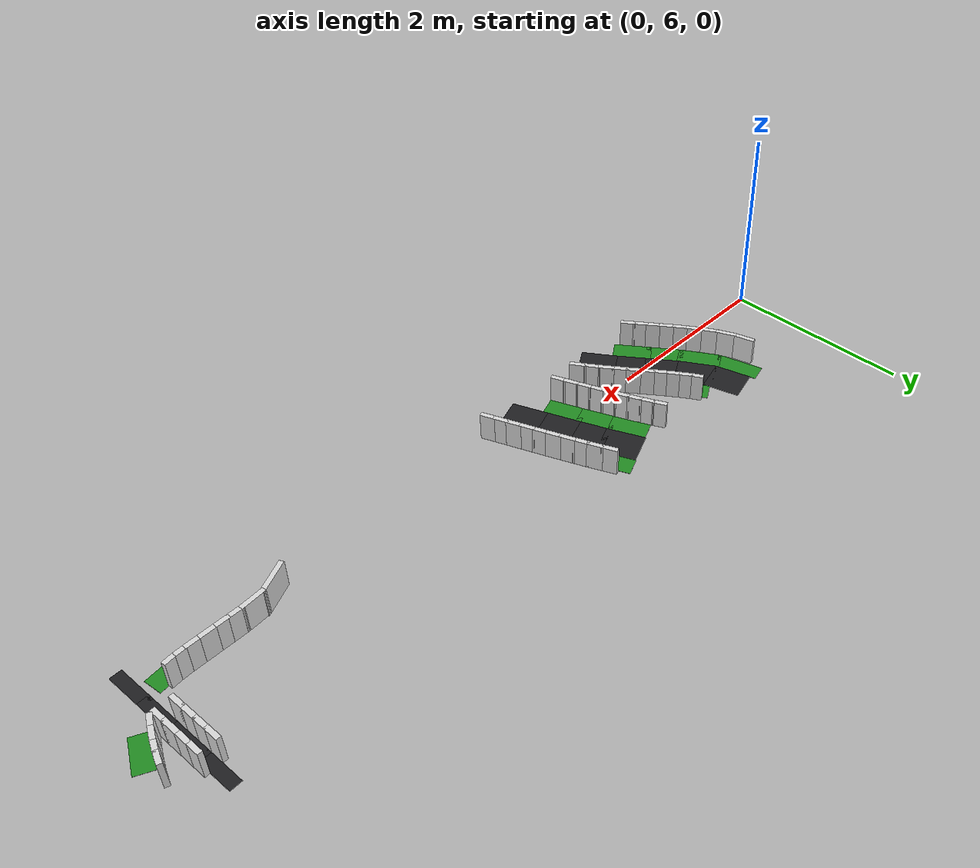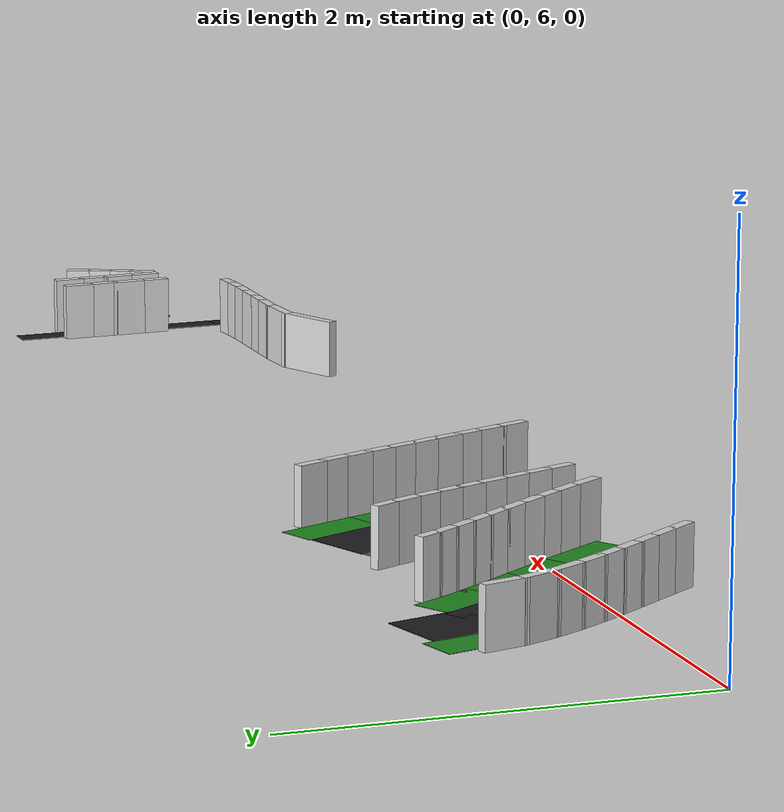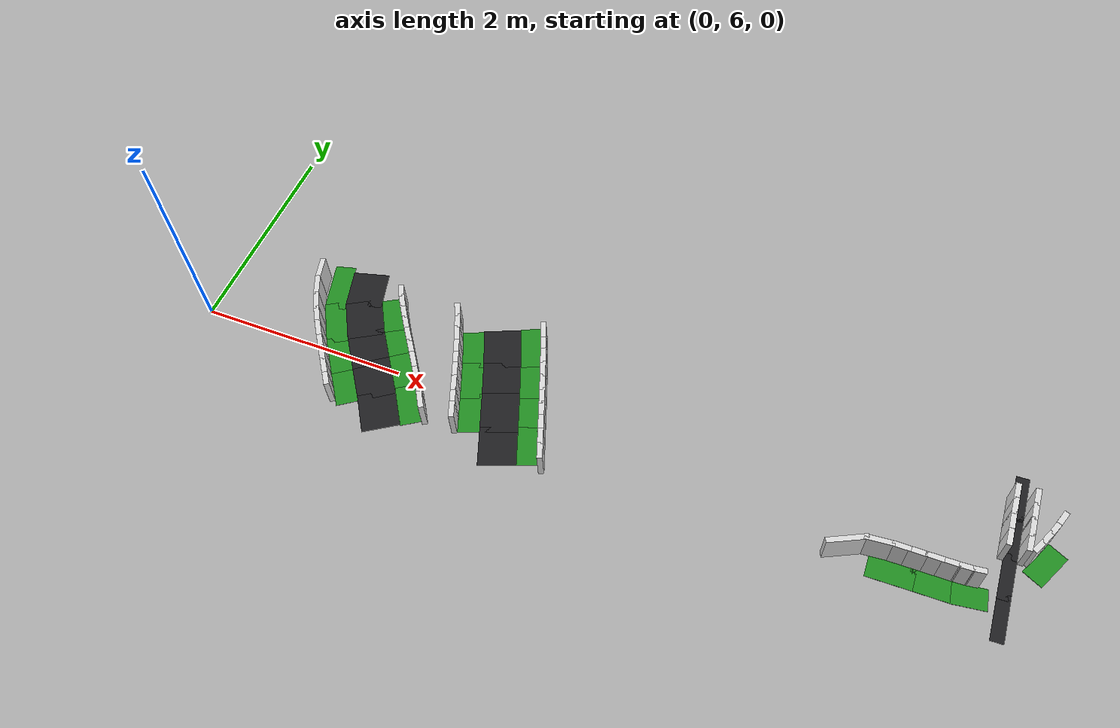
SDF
<sdf version="1.8">
 <world name="it_arena_track">
  <model name="it_arena_track_static">
   <static>true</static>
   <link name="surface_main_69">
    <pose>3.1874 5.6186 0.0015 0 0 1.93135</pose>
    <collision name="surface_main_69_col">
     <geometry><box><size>0.3910 0.3500 0.0030</size></box></geometry>
    </collision>
    <visual name="surface_main_69_vis">
     <geometry><box><size>0.3910 0.3500 0.0030</size></box></geometry>
     <material><ambient>0.12 0.12 0.13 1</ambient><diffuse>0.12 0.12 0.13 1</diffuse></material>
    </visual>
   </link>
   <link name="surface_main_70">
    <pose>3.0635 5.9459 0.0015 0 0 1.93382</pose>
    <collision name="surface_main_70_col">
     <geometry><box><size>0.4140 0.3500 0.0030</size></box></geometry>
    </collision>
    <visual name="surface_main_70_vis">
     <geometry><box><size>0.4140 0.3500 0.0030</size></box></geometry>
     <material><ambient>0.12 0.12 0.13 1</ambient><diffuse>0.12 0.12 0.13 1</diffuse></material>
    </visual>
   </link>
   <link name="surface_main_71">
    <pose>2.9375 6.2724 0.0015 0 0 1.94493</pose>
    <collision name="surface_main_71_col">
     <geometry><box><size>0.3910 0.3500 0.0030</size></box></geometry>
    </collision>
    <visual name="surface_main_71_vis">
     <geometry><box><size>0.3910 0.3500 0.0030</size></box></geometry>
     <material><ambient>0.12 0.12 0.13 1</ambient><diffuse>0.12 0.12 0.13 1</diffuse></material>
    </visual>
   </link>
   <link name="surface_main_72">
    <pose>2.8050 6.5963 0.0015 0 0 1.97211</pose>
    <collision name="surface_main_72_col">
     <geometry><box><size>0.4139 0.3500 0.0030</size></box></geometry>
    </collision>
    <visual name="surface_main_72_vis">
     <geometry><box><size>0.4139 0.3500 0.0030</size></box></geometry>
     <material><ambient>0.12 0.12 0.13 1</ambient><diffuse>0.12 0.12 0.13 1</diffuse></material>
    </visual>
   </link>
   <link name="surface_main_80">
    <pose>1.2921 6.7661 0.0015 0 0 -1.31175</pose>
    <collision name="surface_main_80_col">
     <geometry><box><size>0.3885 0.3500 0.0030</size></box></geometry>
    </collision>
    <visual name="surface_main_80_vis">
     <geometry><box><size>0.3885 0.3500 0.0030</size></box></geometry>
     <material><ambient>0.12 0.12 0.13 1</ambient><diffuse>0.12 0.12 0.13 1</diffuse></material>
    </visual>
   </link>
   <link name="surface_main_81">
    <pose>1.4262 6.4476 0.0015 0 0 -1.04120</pose>
    <collision name="surface_main_81_col">
     <geometry><box><size>0.4136 0.3500 0.0030</size></box></geometry>
    </collision>
    <visual name="surface_main_81_vis">
     <geometry><box><size>0.4136 0.3500 0.0030</size></box></geometry>
     <material><ambient>0.12 0.12 0.13 1</ambient><diffuse>0.12 0.12 0.13 1</diffuse></material>
    </visual>
   </link>
   <link name="surface_main_82">
    <pose>1.6142 6.1529 0.0015 0 0 -0.96266</pose>
    <collision name="surface_main_82_col">
     <geometry><box><size>0.3909 0.3500 0.0030</size></box></geometry>
    </collision>
    <visual name="surface_main_82_vis">
     <geometry><box><size>0.3909 0.3500 0.0030</size></box></geometry>
     <material><ambient>0.12 0.12 0.13 1</ambient><diffuse>0.12 0.12 0.13 1</diffuse></material>
    </visual>
   </link>
   <link name="surface_main_83">
    <pose>1.8152 5.8664 0.0015 0 0 -0.95558</pose>
    <collision name="surface_main_83_col">
     <geometry><box><size>0.4139 0.3500 0.0030</size></box></geometry>
    </collision>
    <visual name="surface_main_83_vis">
     <geometry><box><size>0.4139 0.3500 0.0030</size></box></geometry>
     <material><ambient>0.12 0.12 0.13 1</ambient><diffuse>0.12 0.12 0.13 1</diffuse></material>
    </visual>
   </link>
   <link name="surface_main_84">
    <pose>2.0121 5.5772 0.0015 0 0 -0.99137</pose>
    <collision name="surface_main_84_col">
     <geometry><box><size>0.3909 0.3500 0.0030</size></box></geometry>
    </collision>
    <visual name="surface_main_84_vis">
     <geometry><box><size>0.3909 0.3500 0.0030</size></box></geometry>
     <material><ambient>0.12 0.12 0.13 1</ambient><diffuse>0.12 0.12 0.13 1</diffuse></material>
    </visual>
   </link>
   <link name="surface_branch0_4">
    <pose>7.6753 6.7531 0.0015 0 0 -1.53135</pose>
    <collision name="surface_branch0_4_col">
     <geometry><box><size>0.4392 0.1200 0.0030</size></box></geometry>
    </collision>
    <visual name="surface_branch0_4_vis">
     <geometry><box><size>0.4392 0.1200 0.0030</size></box></geometry>
     <material><ambient>0.12 0.12 0.13 1</ambient><diffuse>0.12 0.12 0.13 1</diffuse></material>
    </visual>
   </link>
   <link name="surface_branch0_5">
    <pose>7.6909 6.3715 0.0015 0 0 -1.52872</pose>
    <collision name="surface_branch0_5_col">
     <geometry><box><size>0.4392 0.1200 0.0030</size></box></geometry>
    </collision>
    <visual name="surface_branch0_5_vis">
     <geometry><box><size>0.4392 0.1200 0.0030</size></box></geometry>
     <material><ambient>0.12 0.12 0.13 1</ambient><diffuse>0.12 0.12 0.13 1</diffuse></material>
    </visual>
   </link>
   <link name="surface_branch0_6">
    <pose>7.7064 5.9899 0.0015 0 0 -1.53139</pose>
    <collision name="surface_branch0_6_col">
     <geometry><box><size>0.4392 0.1200 0.0030</size></box></geometry>
    </collision>
    <visual name="surface_branch0_6_vis">
     <geometry><box><size>0.4392 0.1200 0.0030</size></box></geometry>
     <material><ambient>0.12 0.12 0.13 1</ambient><diffuse>0.12 0.12 0.13 1</diffuse></material>
    </visual>
   </link>
   <link name="surface_branch0_7">
    <pose>7.7220 5.6083 0.0015 0 0 -1.52878</pose>
    <collision name="surface_branch0_7_col">
     <geometry><box><size>0.4392 0.1200 0.0030</size></box></geometry>
    </collision>
    <visual name="surface_branch0_7_vis">
     <geometry><box><size>0.4392 0.1200 0.0030</size></box></geometry>
     <material><ambient>0.12 0.12 0.13 1</ambient><diffuse>0.12 0.12 0.13 1</diffuse></material>
    </visual>
   </link>
   <link name="grass_main_left_70">
    <pose>2.8066 5.8479 0.0010 0 0 1.93381</pose>
    <collision name="grass_main_left_70_col">
     <geometry><box><size>0.4123 0.2000 0.0020</size></box></geometry>
    </collision>
    <visual name="grass_main_left_70_vis">
     <geometry><box><size>0.4123 0.2000 0.0020</size></box></geometry>
     <material><ambient>0.13 0.55 0.13 1</ambient><diffuse>0.13 0.55 0.13 1</diffuse></material>
    </visual>
   </link>
   <link name="grass_main_left_71">
    <pose>2.6815 6.1717 0.0010 0 0 1.94493</pose>
    <collision name="grass_main_left_71_col">
     <geometry><box><size>0.3862 0.2000 0.0020</size></box></geometry>
    </collision>
    <visual name="grass_main_left_71_vis">
     <geometry><box><size>0.3862 0.2000 0.0020</size></box></geometry>
     <material><ambient>0.13 0.55 0.13 1</ambient><diffuse>0.13 0.55 0.13 1</diffuse></material>
    </visual>
   </link>
   <link name="grass_main_left_72">
    <pose>2.5523 6.4881 0.0010 0 0 1.97200</pose>
    <collision name="grass_main_left_72_col">
     <geometry><box><size>0.3999 0.2000 0.0020</size></box></geometry>
    </collision>
    <visual name="grass_main_left_72_vis">
     <geometry><box><size>0.3999 0.2000 0.0020</size></box></geometry>
     <material><ambient>0.13 0.55 0.13 1</ambient><diffuse>0.13 0.55 0.13 1</diffuse></material>
    </visual>
   </link>
   <link name="grass_main_left_81">
    <pose>1.6651 6.5824 0.0010 0 0 -1.03921</pose>
    <collision name="grass_main_left_81_col">
     <geometry><box><size>0.3670 0.2000 0.0020</size></box></geometry>
    </collision>
    <visual name="grass_main_left_81_vis">
     <geometry><box><size>0.3670 0.2000 0.0020</size></box></geometry>
     <material><ambient>0.13 0.55 0.13 1</ambient><diffuse>0.13 0.55 0.13 1</diffuse></material>
    </visual>
   </link>
   <link name="grass_main_left_82">
    <pose>1.8405 6.3090 0.0010 0 0 -0.96254</pose>
    <collision name="grass_main_left_82_col">
     <geometry><box><size>0.3807 0.2000 0.0020</size></box></geometry>
    </collision>
    <visual name="grass_main_left_82_vis">
     <geometry><box><size>0.3807 0.2000 0.0020</size></box></geometry>
     <material><ambient>0.13 0.55 0.13 1</ambient><diffuse>0.13 0.55 0.13 1</diffuse></material>
    </visual>
   </link>
   <link name="grass_main_left_83">
    <pose>2.0402 6.0245 0.0010 0 0 -0.95561</pose>
    <collision name="grass_main_left_83_col">
     <geometry><box><size>0.4186 0.2000 0.0020</size></box></geometry>
    </collision>
    <visual name="grass_main_left_83_vis">
     <geometry><box><size>0.4186 0.2000 0.0020</size></box></geometry>
     <material><ambient>0.13 0.55 0.13 1</ambient><diffuse>0.13 0.55 0.13 1</diffuse></material>
    </visual>
   </link>
   <link name="grass_main_left_84">
    <pose>2.2425 5.7271 0.0010 0 0 -0.99149</pose>
    <collision name="grass_main_left_84_col">
     <geometry><box><size>0.4088 0.2000 0.0020</size></box></geometry>
    </collision>
    <visual name="grass_main_left_84_vis">
     <geometry><box><size>0.4088 0.2000 0.0020</size></box></geometry>
     <material><ambient>0.13 0.55 0.13 1</ambient><diffuse>0.13 0.55 0.13 1</diffuse></material>
    </visual>
   </link>
   <link name="grass_main_right_41">
    <pose>7.9896 6.2049 0.0010 0 0 -2.03474</pose>
    <collision name="grass_main_right_41_col">
     <geometry><box><size>0.3727 0.2000 0.0020</size></box></geometry>
    </collision>
    <visual name="grass_main_right_41_vis">
     <geometry><box><size>0.3727 0.2000 0.0020</size></box></geometry>
     <material><ambient>0.13 0.55 0.13 1</ambient><diffuse>0.13 0.55 0.13 1</diffuse></material>
    </visual>
   </link>
   <link name="grass_main_right_42">
    <pose>7.4437 5.7034 0.0010 0 0 -3.01030</pose>
    <collision name="grass_main_right_42_col">
     <geometry><box><size>0.3095 0.2000 0.0020</size></box></geometry>
    </collision>
    <visual name="grass_main_right_42_vis">
     <geometry><box><size>0.3095 0.2000 0.0020</size></box></geometry>
     <material><ambient>0.13 0.55 0.13 1</ambient><diffuse>0.13 0.55 0.13 1</diffuse></material>
    </visual>
   </link>
   <link name="grass_main_right_43">
    <pose>7.1339 5.6831 0.0010 0 0 -3.12628</pose>
    <collision name="grass_main_right_43_col">
     <geometry><box><size>0.4059 0.2000 0.0020</size></box></geometry>
    </collision>
    <visual name="grass_main_right_43_vis">
     <geometry><box><size>0.4059 0.2000 0.0020</size></box></geometry>
     <material><ambient>0.13 0.55 0.13 1</ambient><diffuse>0.13 0.55 0.13 1</diffuse></material>
    </visual>
   </link>
   <link name="grass_main_right_44">
    <pose>6.7774 5.6766 0.0010 0 0 -3.12054</pose>
    <collision name="grass_main_right_44_col">
     <geometry><box><size>0.4142 0.2000 0.0020</size></box></geometry>
    </collision>
    <visual name="grass_main_right_44_vis">
     <geometry><box><size>0.4142 0.2000 0.0020</size></box></geometry>
     <material><ambient>0.13 0.55 0.13 1</ambient><diffuse>0.13 0.55 0.13 1</diffuse></material>
    </visual>
   </link>
   <link name="grass_main_right_63">
    <pose>3.4446 5.7159 0.0010 0 0 1.93135</pose>
    <collision name="grass_main_right_63_col">
     <geometry><box><size>0.3914 0.2000 0.0020</size></box></geometry>
    </collision>
    <visual name="grass_main_right_63_vis">
     <geometry><box><size>0.3914 0.2000 0.0020</size></box></geometry>
     <material><ambient>0.13 0.55 0.13 1</ambient><diffuse>0.13 0.55 0.13 1</diffuse></material>
    </visual>
   </link>
   <link name="grass_main_right_64">
    <pose>3.3204 6.0440 0.0010 0 0 1.93382</pose>
    <collision name="grass_main_right_64_col">
     <geometry><box><size>0.4156 0.2000 0.0020</size></box></geometry>
    </collision>
    <visual name="grass_main_right_64_vis">
     <geometry><box><size>0.4156 0.2000 0.0020</size></box></geometry>
     <material><ambient>0.13 0.55 0.13 1</ambient><diffuse>0.13 0.55 0.13 1</diffuse></material>
    </visual>
   </link>
   <link name="grass_main_right_65">
    <pose>3.1934 6.3731 0.0010 0 0 1.94494</pose>
    <collision name="grass_main_right_65_col">
     <geometry><box><size>0.3957 0.2000 0.0020</size></box></geometry>
    </collision>
    <visual name="grass_main_right_65_vis">
     <geometry><box><size>0.3957 0.2000 0.0020</size></box></geometry>
     <material><ambient>0.13 0.55 0.13 1</ambient><diffuse>0.13 0.55 0.13 1</diffuse></material>
    </visual>
   </link>
   <link name="grass_main_right_66">
    <pose>3.0578 6.7045 0.0010 0 0 1.97221</pose>
    <collision name="grass_main_right_66_col">
     <geometry><box><size>0.4280 0.2000 0.0020</size></box></geometry>
    </collision>
    <visual name="grass_main_right_66_vis">
     <geometry><box><size>0.4280 0.2000 0.0020</size></box></geometry>
     <material><ambient>0.13 0.55 0.13 1</ambient><diffuse>0.13 0.55 0.13 1</diffuse></material>
    </visual>
   </link>
   <link name="grass_main_right_74">
    <pose>1.0306 6.6977 0.0010 0 0 -1.31254</pose>
    <collision name="grass_main_right_74_col">
     <geometry><box><size>0.5046 0.2000 0.0020</size></box></geometry>
    </collision>
    <visual name="grass_main_right_74_vis">
     <geometry><box><size>0.5046 0.2000 0.0020</size></box></geometry>
     <material><ambient>0.13 0.55 0.13 1</ambient><diffuse>0.13 0.55 0.13 1</diffuse></material>
    </visual>
   </link>
   <link name="grass_main_right_75">
    <pose>1.1874 6.3128 0.0010 0 0 -1.04279</pose>
    <collision name="grass_main_right_75_col">
     <geometry><box><size>0.4602 0.2000 0.0020</size></box></geometry>
    </collision>
    <visual name="grass_main_right_75_vis">
     <geometry><box><size>0.4602 0.2000 0.0020</size></box></geometry>
     <material><ambient>0.13 0.55 0.13 1</ambient><diffuse>0.13 0.55 0.13 1</diffuse></material>
    </visual>
   </link>
   <link name="grass_main_right_76">
    <pose>1.3878 5.9968 0.0010 0 0 -0.96277</pose>
    <collision name="grass_main_right_76_col">
     <geometry><box><size>0.4011 0.2000 0.0020</size></box></geometry>
    </collision>
    <visual name="grass_main_right_76_vis">
     <geometry><box><size>0.4011 0.2000 0.0020</size></box></geometry>
     <material><ambient>0.13 0.55 0.13 1</ambient><diffuse>0.13 0.55 0.13 1</diffuse></material>
    </visual>
   </link>
   <link name="grass_main_right_77">
    <pose>1.5902 5.7083 0.0010 0 0 -0.95555</pose>
    <collision name="grass_main_right_77_col">
     <geometry><box><size>0.4093 0.2000 0.0020</size></box></geometry>
    </collision>
    <visual name="grass_main_right_77_vis">
     <geometry><box><size>0.4093 0.2000 0.0020</size></box></geometry>
     <material><ambient>0.13 0.55 0.13 1</ambient><diffuse>0.13 0.55 0.13 1</diffuse></material>
    </visual>
   </link>
   <link name="walls_main_left_175">
    <pose>2.7357 5.6828 0.1500 0 0 1.93191</pose>
    <collision name="walls_main_left_175_col">
     <geometry><box><size>0.1613 0.0500 0.3000</size></box></geometry>
     <surface><friction><ode><mu>0.8</mu><mu2>0.8</mu2></ode></friction></surface>
    </collision>
    <visual name="walls_main_left_175_vis">
     <geometry><box><size>0.1613 0.0500 0.3000</size></box></geometry>
     <material><ambient>0.85 0.85 0.85 1</ambient><diffuse>0.85 0.85 0.85 1</diffuse></material>
    </visual>
   </link>
   <link name="walls_main_left_176">
    <pose>2.6862 5.8134 0.1500 0 0 1.93416</pose>
    <collision name="walls_main_left_176_col">
     <geometry><box><size>0.1598 0.0500 0.3000</size></box></geometry>
     <surface><friction><ode><mu>0.8</mu><mu2>0.8</mu2></ode></friction></surface>
    </collision>
    <visual name="walls_main_left_176_vis">
     <geometry><box><size>0.1598 0.0500 0.3000</size></box></geometry>
     <material><ambient>0.85 0.85 0.85 1</ambient><diffuse>0.85 0.85 0.85 1</diffuse></material>
    </visual>
   </link>
   <link name="walls_main_left_177">
    <pose>2.6368 5.9428 0.1500 0 0 1.93686</pose>
    <collision name="walls_main_left_177_col">
     <geometry><box><size>0.1588 0.0500 0.3000</size></box></geometry>
     <surface><friction><ode><mu>0.8</mu><mu2>0.8</mu2></ode></friction></surface>
    </collision>
    <visual name="walls_main_left_177_vis">
     <geometry><box><size>0.1588 0.0500 0.3000</size></box></geometry>
     <material><ambient>0.85 0.85 0.85 1</ambient><diffuse>0.85 0.85 0.85 1</diffuse></material>
    </visual>
   </link>
   <link name="walls_main_left_178">
    <pose>2.5872 6.0714 0.1500 0 0 1.94111</pose>
    <collision name="walls_main_left_178_col">
     <geometry><box><size>0.1582 0.0500 0.3000</size></box></geometry>
     <surface><friction><ode><mu>0.8</mu><mu2>0.8</mu2></ode></friction></surface>
    </collision>
    <visual name="walls_main_left_178_vis">
     <geometry><box><size>0.1582 0.0500 0.3000</size></box></geometry>
     <material><ambient>0.85 0.85 0.85 1</ambient><diffuse>0.85 0.85 0.85 1</diffuse></material>
    </visual>
   </link>
   <link name="walls_main_left_179">
    <pose>2.5368 6.1995 0.1500 0 0 1.94943</pose>
    <collision name="walls_main_left_179_col">
     <geometry><box><size>0.1584 0.0500 0.3000</size></box></geometry>
     <surface><friction><ode><mu>0.8</mu><mu2>0.8</mu2></ode></friction></surface>
    </collision>
    <visual name="walls_main_left_179_vis">
     <geometry><box><size>0.1584 0.0500 0.3000</size></box></geometry>
     <material><ambient>0.85 0.85 0.85 1</ambient><diffuse>0.85 0.85 0.85 1</diffuse></material>
    </visual>
   </link>
   <link name="walls_main_left_180">
    <pose>2.4858 6.3259 0.1500 0 0 1.95913</pose>
    <collision name="walls_main_left_180_col">
     <geometry><box><size>0.1551 0.0500 0.3000</size></box></geometry>
     <surface><friction><ode><mu>0.8</mu><mu2>0.8</mu2></ode></friction></surface>
    </collision>
    <visual name="walls_main_left_180_vis">
     <geometry><box><size>0.1551 0.0500 0.3000</size></box></geometry>
     <material><ambient>0.85 0.85 0.85 1</ambient><diffuse>0.85 0.85 0.85 1</diffuse></material>
    </visual>
   </link>
   <link name="walls_main_left_181">
    <pose>2.4343 6.4498 0.1500 0 0 1.97159</pose>
    <collision name="walls_main_left_181_col">
     <geometry><box><size>0.1536 0.0500 0.3000</size></box></geometry>
     <surface><friction><ode><mu>0.8</mu><mu2>0.8</mu2></ode></friction></surface>
    </collision>
    <visual name="walls_main_left_181_vis">
     <geometry><box><size>0.1536 0.0500 0.3000</size></box></geometry>
     <material><ambient>0.85 0.85 0.85 1</ambient><diffuse>0.85 0.85 0.85 1</diffuse></material>
    </visual>
   </link>
   <link name="walls_main_left_182">
    <pose>2.3815 6.5708 0.1500 0 0 1.99168</pose>
    <collision name="walls_main_left_182_col">
     <geometry><box><size>0.1500 0.0500 0.3000</size></box></geometry>
     <surface><friction><ode><mu>0.8</mu><mu2>0.8</mu2></ode></friction></surface>
    </collision>
    <visual name="walls_main_left_182_vis">
     <geometry><box><size>0.1500 0.0500 0.3000</size></box></geometry>
     <material><ambient>0.85 0.85 0.85 1</ambient><diffuse>0.85 0.85 0.85 1</diffuse></material>
    </visual>
   </link>
   <link name="walls_main_left_183">
    <pose>2.3273 6.6878 0.1500 0 0 2.01843</pose>
    <collision name="walls_main_left_183_col">
     <geometry><box><size>0.1466 0.0500 0.3000</size></box></geometry>
     <surface><friction><ode><mu>0.8</mu><mu2>0.8</mu2></ode></friction></surface>
    </collision>
    <visual name="walls_main_left_183_vis">
     <geometry><box><size>0.1466 0.0500 0.3000</size></box></geometry>
     <material><ambient>0.85 0.85 0.85 1</ambient><diffuse>0.85 0.85 0.85 1</diffuse></material>
    </visual>
   </link>
   <link name="walls_main_left_203">
    <pose>1.7382 6.6963 0.1500 0 0 -1.06342</pose>
    <collision name="walls_main_left_203_col">
     <geometry><box><size>0.1300 0.0500 0.3000</size></box></geometry>
     <surface><friction><ode><mu>0.8</mu><mu2>0.8</mu2></ode></friction></surface>
    </collision>
    <visual name="walls_main_left_203_vis">
     <geometry><box><size>0.1300 0.0500 0.3000</size></box></geometry>
     <material><ambient>0.85 0.85 0.85 1</ambient><diffuse>0.85 0.85 0.85 1</diffuse></material>
    </visual>
   </link>
   <link name="walls_main_left_204">
    <pose>1.7977 6.5960 0.1500 0 0 -1.01028</pose>
    <collision name="walls_main_left_204_col">
     <geometry><box><size>0.1383 0.0500 0.3000</size></box></geometry>
     <surface><friction><ode><mu>0.8</mu><mu2>0.8</mu2></ode></friction></surface>
    </collision>
    <visual name="walls_main_left_204_vis">
     <geometry><box><size>0.1383 0.0500 0.3000</size></box></geometry>
     <material><ambient>0.85 0.85 0.85 1</ambient><diffuse>0.85 0.85 0.85 1</diffuse></material>
    </visual>
   </link>
   <link name="walls_main_left_205">
    <pose>1.8660 6.4910 0.1500 0 0 -0.97845</pose>
    <collision name="walls_main_left_205_col">
     <geometry><box><size>0.1498 0.0500 0.3000</size></box></geometry>
     <surface><friction><ode><mu>0.8</mu><mu2>0.8</mu2></ode></friction></surface>
    </collision>
    <visual name="walls_main_left_205_vis">
     <geometry><box><size>0.1498 0.0500 0.3000</size></box></geometry>
     <material><ambient>0.85 0.85 0.85 1</ambient><diffuse>0.85 0.85 0.85 1</diffuse></material>
    </visual>
   </link>
   <link name="walls_main_left_206">
    <pose>1.9412 6.3813 0.1500 0 0 -0.96094</pose>
    <collision name="walls_main_left_206_col">
     <geometry><box><size>0.1562 0.0500 0.3000</size></box></geometry>
     <surface><friction><ode><mu>0.8</mu><mu2>0.8</mu2></ode></friction></surface>
    </collision>
    <visual name="walls_main_left_206_vis">
     <geometry><box><size>0.1562 0.0500 0.3000</size></box></geometry>
     <material><ambient>0.85 0.85 0.85 1</ambient><diffuse>0.85 0.85 0.85 1</diffuse></material>
    </visual>
   </link>
   <link name="walls_main_left_207">
    <pose>2.0201 6.2695 0.1500 0 0 -0.95225</pose>
    <collision name="walls_main_left_207_col">
     <geometry><box><size>0.1585 0.0500 0.3000</size></box></geometry>
     <surface><friction><ode><mu>0.8</mu><mu2>0.8</mu2></ode></friction></surface>
    </collision>
    <visual name="walls_main_left_207_vis">
     <geometry><box><size>0.1585 0.0500 0.3000</size></box></geometry>
     <material><ambient>0.85 0.85 0.85 1</ambient><diffuse>0.85 0.85 0.85 1</diffuse></material>
    </visual>
   </link>
   <link name="walls_main_left_208">
    <pose>2.1011 6.1557 0.1500 0 0 -0.95218</pose>
    <collision name="walls_main_left_208_col">
     <geometry><box><size>0.1628 0.0500 0.3000</size></box></geometry>
     <surface><friction><ode><mu>0.8</mu><mu2>0.8</mu2></ode></friction></surface>
    </collision>
    <visual name="walls_main_left_208_vis">
     <geometry><box><size>0.1628 0.0500 0.3000</size></box></geometry>
     <material><ambient>0.85 0.85 0.85 1</ambient><diffuse>0.85 0.85 0.85 1</diffuse></material>
    </visual>
   </link>
   <link name="walls_main_left_209">
    <pose>2.1835 6.0391 0.1500 0 0 -0.95793</pose>
    <collision name="walls_main_left_209_col">
     <geometry><box><size>0.1655 0.0500 0.3000</size></box></geometry>
     <surface><friction><ode><mu>0.8</mu><mu2>0.8</mu2></ode></friction></surface>
    </collision>
    <visual name="walls_main_left_209_vis">
     <geometry><box><size>0.1655 0.0500 0.3000</size></box></geometry>
     <material><ambient>0.85 0.85 0.85 1</ambient><diffuse>0.85 0.85 0.85 1</diffuse></material>
    </visual>
   </link>
   <link name="walls_main_left_210">
    <pose>2.2661 5.9201 0.1500 0 0 -0.97124</pose>
    <collision name="walls_main_left_210_col">
     <geometry><box><size>0.1676 0.0500 0.3000</size></box></geometry>
     <surface><friction><ode><mu>0.8</mu><mu2>0.8</mu2></ode></friction></surface>
    </collision>
    <visual name="walls_main_left_210_vis">
     <geometry><box><size>0.1676 0.0500 0.3000</size></box></geometry>
     <material><ambient>0.85 0.85 0.85 1</ambient><diffuse>0.85 0.85 0.85 1</diffuse></material>
    </visual>
   </link>
   <link name="walls_main_left_211">
    <pose>2.3481 5.7977 0.1500 0 0 -0.98922</pose>
    <collision name="walls_main_left_211_col">
     <geometry><box><size>0.1712 0.0500 0.3000</size></box></geometry>
     <surface><friction><ode><mu>0.8</mu><mu2>0.8</mu2></ode></friction></surface>
    </collision>
    <visual name="walls_main_left_211_vis">
     <geometry><box><size>0.1712 0.0500 0.3000</size></box></geometry>
     <material><ambient>0.85 0.85 0.85 1</ambient><diffuse>0.85 0.85 0.85 1</diffuse></material>
    </visual>
   </link>
   <link name="walls_main_left_212">
    <pose>2.4290 5.6709 0.1500 0 0 -1.01666</pose>
    <collision name="walls_main_left_212_col">
     <geometry><box><size>0.1748 0.0500 0.3000</size></box></geometry>
     <surface><friction><ode><mu>0.8</mu><mu2>0.8</mu2></ode></friction></surface>
    </collision>
    <visual name="walls_main_left_212_vis">
     <geometry><box><size>0.1748 0.0500 0.3000</size></box></geometry>
     <material><ambient>0.85 0.85 0.85 1</ambient><diffuse>0.85 0.85 0.85 1</diffuse></material>
    </visual>
   </link>
   <link name="walls_main_right_102">
    <pose>7.9981 6.5325 0.1500 0 0 -1.90756</pose>
    <collision name="walls_main_right_102_col">
     <geometry><box><size>0.1365 0.0500 0.3000</size></box></geometry>
     <surface><friction><ode><mu>0.8</mu><mu2>0.8</mu2></ode></friction></surface>
    </collision>
    <visual name="walls_main_right_102_vis">
     <geometry><box><size>0.1365 0.0500 0.3000</size></box></geometry>
     <material><ambient>0.85 0.85 0.85 1</ambient><diffuse>0.85 0.85 0.85 1</diffuse></material>
    </visual>
   </link>
   <link name="walls_main_right_103">
    <pose>7.9557 6.4211 0.1500 0 0 -1.96091</pose>
    <collision name="walls_main_right_103_col">
     <geometry><box><size>0.1376 0.0500 0.3000</size></box></geometry>
     <surface><friction><ode><mu>0.8</mu><mu2>0.8</mu2></ode></friction></surface>
    </collision>
    <visual name="walls_main_right_103_vis">
     <geometry><box><size>0.1376 0.0500 0.3000</size></box></geometry>
     <material><ambient>0.85 0.85 0.85 1</ambient><diffuse>0.85 0.85 0.85 1</diffuse></material>
    </visual>
   </link>
   <link name="walls_main_right_104">
    <pose>7.9078 6.3122 0.1500 0 0 -2.01065</pose>
    <collision name="walls_main_right_104_col">
     <geometry><box><size>0.1362 0.0500 0.3000</size></box></geometry>
     <surface><friction><ode><mu>0.8</mu><mu2>0.8</mu2></ode></friction></surface>
    </collision>
    <visual name="walls_main_right_104_vis">
     <geometry><box><size>0.1362 0.0500 0.3000</size></box></geometry>
     <material><ambient>0.85 0.85 0.85 1</ambient><diffuse>0.85 0.85 0.85 1</diffuse></material>
    </visual>
   </link>
   <link name="walls_main_right_105">
    <pose>7.8542 6.2052 0.1500 0 0 -2.05836</pose>
    <collision name="walls_main_right_105_col">
     <geometry><box><size>0.1393 0.0500 0.3000</size></box></geometry>
     <surface><friction><ode><mu>0.8</mu><mu2>0.8</mu2></ode></friction></surface>
    </collision>
    <visual name="walls_main_right_105_vis">
     <geometry><box><size>0.1393 0.0500 0.3000</size></box></geometry>
     <material><ambient>0.85 0.85 0.85 1</ambient><diffuse>0.85 0.85 0.85 1</diffuse></material>
    </visual>
   </link>
   <link name="walls_main_right_106">
    <pose>7.4366 5.8215 0.1500 0 0 -3.01596</pose>
    <collision name="walls_main_right_106_col">
     <geometry><box><size>0.1133 0.0500 0.3000</size></box></geometry>
     <surface><friction><ode><mu>0.8</mu><mu2>0.8</mu2></ode></friction></surface>
    </collision>
    <visual name="walls_main_right_106_vis">
     <geometry><box><size>0.1133 0.0500 0.3000</size></box></geometry>
     <material><ambient>0.85 0.85 0.85 1</ambient><diffuse>0.85 0.85 0.85 1</diffuse></material>
    </visual>
   </link>
   <link name="walls_main_right_107">
    <pose>7.3301 5.8125 0.1500 0 0 -3.09328</pose>
    <collision name="walls_main_right_107_col">
     <geometry><box><size>0.1327 0.0500 0.3000</size></box></geometry>
     <surface><friction><ode><mu>0.8</mu><mu2>0.8</mu2></ode></friction></surface>
    </collision>
    <visual name="walls_main_right_107_vis">
     <geometry><box><size>0.1327 0.0500 0.3000</size></box></geometry>
     <material><ambient>0.85 0.85 0.85 1</ambient><diffuse>0.85 0.85 0.85 1</diffuse></material>
    </visual>
   </link>
   <link name="walls_main_right_108">
    <pose>7.2041 5.8087 0.1500 0 0 -3.12639</pose>
    <collision name="walls_main_right_108_col">
     <geometry><box><size>0.1572 0.0500 0.3000</size></box></geometry>
     <surface><friction><ode><mu>0.8</mu><mu2>0.8</mu2></ode></friction></surface>
    </collision>
    <visual name="walls_main_right_108_vis">
     <geometry><box><size>0.1572 0.0500 0.3000</size></box></geometry>
     <material><ambient>0.85 0.85 0.85 1</ambient><diffuse>0.85 0.85 0.85 1</diffuse></material>
    </visual>
   </link>
   <link name="walls_main_right_109">
    <pose>7.0659 5.8068 0.1500 0 0 -3.12888</pose>
    <collision name="walls_main_right_109_col">
     <geometry><box><size>0.1607 0.0500 0.3000</size></box></geometry>
     <surface><friction><ode><mu>0.8</mu><mu2>0.8</mu2></ode></friction></surface>
    </collision>
    <visual name="walls_main_right_109_vis">
     <geometry><box><size>0.1607 0.0500 0.3000</size></box></geometry>
     <material><ambient>0.85 0.85 0.85 1</ambient><diffuse>0.85 0.85 0.85 1</diffuse></material>
    </visual>
   </link>
   <link name="walls_main_right_110">
    <pose>6.9260 5.8050 0.1500 0 0 -3.12888</pose>
    <collision name="walls_main_right_110_col">
     <geometry><box><size>0.1612 0.0500 0.3000</size></box></geometry>
     <surface><friction><ode><mu>0.8</mu><mu2>0.8</mu2></ode></friction></surface>
    </collision>
    <visual name="walls_main_right_110_vis">
     <geometry><box><size>0.1612 0.0500 0.3000</size></box></geometry>
     <material><ambient>0.85 0.85 0.85 1</ambient><diffuse>0.85 0.85 0.85 1</diffuse></material>
    </visual>
   </link>
   <link name="walls_main_right_111">
    <pose>6.7856 5.8032 0.1500 0 0 -3.12847</pose>
    <collision name="walls_main_right_111_col">
     <geometry><box><size>0.1617 0.0500 0.3000</size></box></geometry>
     <surface><friction><ode><mu>0.8</mu><mu2>0.8</mu2></ode></friction></surface>
    </collision>
    <visual name="walls_main_right_111_vis">
     <geometry><box><size>0.1617 0.0500 0.3000</size></box></geometry>
     <material><ambient>0.85 0.85 0.85 1</ambient><diffuse>0.85 0.85 0.85 1</diffuse></material>
    </visual>
   </link>
   <link name="walls_main_right_112">
    <pose>6.6022 5.7920 0.1500 0 0 -3.05141</pose>
    <collision name="walls_main_right_112_col">
     <geometry><box><size>0.2610 0.0500 0.3000</size></box></geometry>
     <surface><friction><ode><mu>0.8</mu><mu2>0.8</mu2></ode></friction></surface>
    </collision>
    <visual name="walls_main_right_112_vis">
     <geometry><box><size>0.2610 0.0500 0.3000</size></box></geometry>
     <material><ambient>0.85 0.85 0.85 1</ambient><diffuse>0.85 0.85 0.85 1</diffuse></material>
    </visual>
   </link>
   <link name="walls_main_right_113">
    <pose>6.3452 5.7114 0.1500 0 0 -2.68657</pose>
    <collision name="walls_main_right_113_col">
     <geometry><box><size>0.3687 0.0500 0.3000</size></box></geometry>
     <surface><friction><ode><mu>0.8</mu><mu2>0.8</mu2></ode></friction></surface>
    </collision>
    <visual name="walls_main_right_113_vis">
     <geometry><box><size>0.3687 0.0500 0.3000</size></box></geometry>
     <material><ambient>0.85 0.85 0.85 1</ambient><diffuse>0.85 0.85 0.85 1</diffuse></material>
    </visual>
   </link>
   <link name="walls_main_right_157">
    <pose>3.6319 5.5735 0.1500 0 0 1.93197</pose>
    <collision name="walls_main_right_157_col">
     <geometry><box><size>0.1598 0.0500 0.3000</size></box></geometry>
     <surface><friction><ode><mu>0.8</mu><mu2>0.8</mu2></ode></friction></surface>
    </collision>
    <visual name="walls_main_right_157_vis">
     <geometry><box><size>0.1598 0.0500 0.3000</size></box></geometry>
     <material><ambient>0.85 0.85 0.85 1</ambient><diffuse>0.85 0.85 0.85 1</diffuse></material>
    </visual>
   </link>
   <link name="walls_main_right_158">
    <pose>3.5828 5.7036 0.1500 0 0 1.93131</pose>
    <collision name="walls_main_right_158_col">
     <geometry><box><size>0.1601 0.0500 0.3000</size></box></geometry>
     <surface><friction><ode><mu>0.8</mu><mu2>0.8</mu2></ode></friction></surface>
    </collision>
    <visual name="walls_main_right_158_vis">
     <geometry><box><size>0.1601 0.0500 0.3000</size></box></geometry>
     <material><ambient>0.85 0.85 0.85 1</ambient><diffuse>0.85 0.85 0.85 1</diffuse></material>
    </visual>
   </link>
   <link name="walls_main_right_159">
    <pose>3.5334 5.8348 0.1500 0 0 1.93086</pose>
    <collision name="walls_main_right_159_col">
     <geometry><box><size>0.1621 0.0500 0.3000</size></box></geometry>
     <surface><friction><ode><mu>0.8</mu><mu2>0.8</mu2></ode></friction></surface>
    </collision>
    <visual name="walls_main_right_159_vis">
     <geometry><box><size>0.1621 0.0500 0.3000</size></box></geometry>
     <material><ambient>0.85 0.85 0.85 1</ambient><diffuse>0.85 0.85 0.85 1</diffuse></material>
    </visual>
   </link>
   <link name="walls_main_right_160">
    <pose>3.4838 5.9661 0.1500 0 0 1.93191</pose>
    <collision name="walls_main_right_160_col">
     <geometry><box><size>0.1607 0.0500 0.3000</size></box></geometry>
     <surface><friction><ode><mu>0.8</mu><mu2>0.8</mu2></ode></friction></surface>
    </collision>
    <visual name="walls_main_right_160_vis">
     <geometry><box><size>0.1607 0.0500 0.3000</size></box></geometry>
     <material><ambient>0.85 0.85 0.85 1</ambient><diffuse>0.85 0.85 0.85 1</diffuse></material>
    </visual>
   </link>
   <link name="walls_main_right_161">
    <pose>3.4341 6.0973 0.1500 0 0 1.93415</pose>
    <collision name="walls_main_right_161_col">
     <geometry><box><size>0.1622 0.0500 0.3000</size></box></geometry>
     <surface><friction><ode><mu>0.8</mu><mu2>0.8</mu2></ode></friction></surface>
    </collision>
    <visual name="walls_main_right_161_vis">
     <geometry><box><size>0.1622 0.0500 0.3000</size></box></geometry>
     <material><ambient>0.85 0.85 0.85 1</ambient><diffuse>0.85 0.85 0.85 1</diffuse></material>
    </visual>
   </link>
   <link name="walls_main_right_162">
    <pose>3.3837 6.2295 0.1500 0 0 1.93687</pose>
    <collision name="walls_main_right_162_col">
     <geometry><box><size>0.1632 0.0500 0.3000</size></box></geometry>
     <surface><friction><ode><mu>0.8</mu><mu2>0.8</mu2></ode></friction></surface>
    </collision>
    <visual name="walls_main_right_162_vis">
     <geometry><box><size>0.1632 0.0500 0.3000</size></box></geometry>
     <material><ambient>0.85 0.85 0.85 1</ambient><diffuse>0.85 0.85 0.85 1</diffuse></material>
    </visual>
   </link>
   <link name="walls_main_right_163">
    <pose>3.3325 6.3621 0.1500 0 0 1.94116</pose>
    <collision name="walls_main_right_163_col">
     <geometry><box><size>0.1638 0.0500 0.3000</size></box></geometry>
     <surface><friction><ode><mu>0.8</mu><mu2>0.8</mu2></ode></friction></surface>
    </collision>
    <visual name="walls_main_right_163_vis">
     <geometry><box><size>0.1638 0.0500 0.3000</size></box></geometry>
     <material><ambient>0.85 0.85 0.85 1</ambient><diffuse>0.85 0.85 0.85 1</diffuse></material>
    </visual>
   </link>
   <link name="walls_main_right_164">
    <pose>3.2804 6.4945 0.1500 0 0 1.94940</pose>
    <collision name="walls_main_right_164_col">
     <geometry><box><size>0.1635 0.0500 0.3000</size></box></geometry>
     <surface><friction><ode><mu>0.8</mu><mu2>0.8</mu2></ode></friction></surface>
    </collision>
    <visual name="walls_main_right_164_vis">
     <geometry><box><size>0.1635 0.0500 0.3000</size></box></geometry>
     <material><ambient>0.85 0.85 0.85 1</ambient><diffuse>0.85 0.85 0.85 1</diffuse></material>
    </visual>
   </link>
   <link name="walls_main_right_165">
    <pose>3.2267 6.6278 0.1500 0 0 1.95903</pose>
    <collision name="walls_main_right_165_col">
     <geometry><box><size>0.1669 0.0500 0.3000</size></box></geometry>
     <surface><friction><ode><mu>0.8</mu><mu2>0.8</mu2></ode></friction></surface>
    </collision>
    <visual name="walls_main_right_165_vis">
     <geometry><box><size>0.1669 0.0500 0.3000</size></box></geometry>
     <material><ambient>0.85 0.85 0.85 1</ambient><diffuse>0.85 0.85 0.85 1</diffuse></material>
    </visual>
   </link>
   <link name="walls_main_right_166">
    <pose>3.1706 6.7623 0.1500 0 0 1.97164</pose>
    <collision name="walls_main_right_166_col">
     <geometry><box><size>0.1684 0.0500 0.3000</size></box></geometry>
     <surface><friction><ode><mu>0.8</mu><mu2>0.8</mu2></ode></friction></surface>
    </collision>
    <visual name="walls_main_right_166_vis">
     <geometry><box><size>0.1684 0.0500 0.3000</size></box></geometry>
     <material><ambient>0.85 0.85 0.85 1</ambient><diffuse>0.85 0.85 0.85 1</diffuse></material>
    </visual>
   </link>
   <link name="walls_main_right_186">
    <pose>0.8937 6.6599 0.1500 0 0 -1.31336</pose>
    <collision name="walls_main_right_186_col">
     <geometry><box><size>0.2332 0.0500 0.3000</size></box></geometry>
     <surface><friction><ode><mu>0.8</mu><mu2>0.8</mu2></ode></friction></surface>
    </collision>
    <visual name="walls_main_right_186_vis">
     <geometry><box><size>0.2332 0.0500 0.3000</size></box></geometry>
     <material><ambient>0.85 0.85 0.85 1</ambient><diffuse>0.85 0.85 0.85 1</diffuse></material>
    </visual>
   </link>
   <link name="walls_main_right_187">
    <pose>0.9573 6.4749 0.1500 0 0 -1.16011</pose>
    <collision name="walls_main_right_187_col">
     <geometry><box><size>0.2180 0.0500 0.3000</size></box></geometry>
     <surface><friction><ode><mu>0.8</mu><mu2>0.8</mu2></ode></friction></surface>
    </collision>
    <visual name="walls_main_right_187_vis">
     <geometry><box><size>0.2180 0.0500 0.3000</size></box></geometry>
     <material><ambient>0.85 0.85 0.85 1</ambient><diffuse>0.85 0.85 0.85 1</diffuse></material>
    </visual>
   </link>
   <link name="walls_main_right_188">
    <pose>1.0355 6.3149 0.1500 0 0 -1.06669</pose>
    <collision name="walls_main_right_188_col">
     <geometry><box><size>0.1918 0.0500 0.3000</size></box></geometry>
     <surface><friction><ode><mu>0.8</mu><mu2>0.8</mu2></ode></friction></surface>
    </collision>
    <visual name="walls_main_right_188_vis">
     <geometry><box><size>0.1918 0.0500 0.3000</size></box></geometry>
     <material><ambient>0.85 0.85 0.85 1</ambient><diffuse>0.85 0.85 0.85 1</diffuse></material>
    </visual>
   </link>
   <link name="walls_main_right_189">
    <pose>1.1181 6.1742 0.1500 0 0 -1.01153</pose>
    <collision name="walls_main_right_189_col">
     <geometry><box><size>0.1836 0.0500 0.3000</size></box></geometry>
     <surface><friction><ode><mu>0.8</mu><mu2>0.8</mu2></ode></friction></surface>
    </collision>
    <visual name="walls_main_right_189_vis">
     <geometry><box><size>0.1836 0.0500 0.3000</size></box></geometry>
     <material><ambient>0.85 0.85 0.85 1</ambient><diffuse>0.85 0.85 0.85 1</diffuse></material>
    </visual>
   </link>
   <link name="walls_main_right_190">
    <pose>1.2023 6.0444 0.1500 0 0 -0.97846</pose>
    <collision name="walls_main_right_190_col">
     <geometry><box><size>0.1722 0.0500 0.3000</size></box></geometry>
     <surface><friction><ode><mu>0.8</mu><mu2>0.8</mu2></ode></friction></surface>
    </collision>
    <visual name="walls_main_right_190_vis">
     <geometry><box><size>0.1722 0.0500 0.3000</size></box></geometry>
     <material><ambient>0.85 0.85 0.85 1</ambient><diffuse>0.85 0.85 0.85 1</diffuse></material>
    </visual>
   </link>
   <link name="walls_main_right_191">
    <pose>1.2854 5.9233 0.1500 0 0 -0.96095</pose>
    <collision name="walls_main_right_191_col">
     <geometry><box><size>0.1658 0.0500 0.3000</size></box></geometry>
     <surface><friction><ode><mu>0.8</mu><mu2>0.8</mu2></ode></friction></surface>
    </collision>
    <visual name="walls_main_right_191_vis">
     <geometry><box><size>0.1658 0.0500 0.3000</size></box></geometry>
     <material><ambient>0.85 0.85 0.85 1</ambient><diffuse>0.85 0.85 0.85 1</diffuse></material>
    </visual>
   </link>
   <link name="walls_main_right_192">
    <pose>1.3679 5.8063 0.1500 0 0 -0.95227</pose>
    <collision name="walls_main_right_192_col">
     <geometry><box><size>0.1635 0.0500 0.3000</size></box></geometry>
     <surface><friction><ode><mu>0.8</mu><mu2>0.8</mu2></ode></friction></surface>
    </collision>
    <visual name="walls_main_right_192_vis">
     <geometry><box><size>0.1635 0.0500 0.3000</size></box></geometry>
     <material><ambient>0.85 0.85 0.85 1</ambient><diffuse>0.85 0.85 0.85 1</diffuse></material>
    </visual>
   </link>
   <link name="walls_main_right_193">
    <pose>1.4492 5.6920 0.1500 0 0 -0.95218</pose>
    <collision name="walls_main_right_193_col">
     <geometry><box><size>0.1591 0.0500 0.3000</size></box></geometry>
     <surface><friction><ode><mu>0.8</mu><mu2>0.8</mu2></ode></friction></surface>
    </collision>
    <visual name="walls_main_right_193_vis">
     <geometry><box><size>0.1591 0.0500 0.3000</size></box></geometry>
     <material><ambient>0.85 0.85 0.85 1</ambient><diffuse>0.85 0.85 0.85 1</diffuse></material>
    </visual>
   </link>
   <link name="walls_main_right_194">
    <pose>1.5284 5.5800 0.1500 0 0 -0.95784</pose>
    <collision name="walls_main_right_194_col">
     <geometry><box><size>0.1564 0.0500 0.3000</size></box></geometry>
     <surface><friction><ode><mu>0.8</mu><mu2>0.8</mu2></ode></friction></surface>
    </collision>
    <visual name="walls_main_right_194_vis">
     <geometry><box><size>0.1564 0.0500 0.3000</size></box></geometry>
     <material><ambient>0.85 0.85 0.85 1</ambient><diffuse>0.85 0.85 0.85 1</diffuse></material>
    </visual>
   </link>
   <link name="walls_branch0_left_4">
    <pose>7.7642 6.6561 0.1500 0 0 -1.53139</pose>
    <collision name="walls_branch0_left_4_col">
     <geometry><box><size>0.1618 0.0500 0.3000</size></box></geometry>
     <surface><friction><ode><mu>0.8</mu><mu2>0.8</mu2></ode></friction></surface>
    </collision>
    <visual name="walls_branch0_left_4_vis">
     <geometry><box><size>0.1618 0.0500 0.3000</size></box></geometry>
     <material><ambient>0.85 0.85 0.85 1</ambient><diffuse>0.85 0.85 0.85 1</diffuse></material>
    </visual>
   </link>
   <link name="walls_branch0_left_5">
    <pose>7.7698 6.5154 0.1500 0 0 -1.53133</pose>
    <collision name="walls_branch0_left_5_col">
     <geometry><box><size>0.1619 0.0500 0.3000</size></box></geometry>
     <surface><friction><ode><mu>0.8</mu><mu2>0.8</mu2></ode></friction></surface>
    </collision>
    <visual name="walls_branch0_left_5_vis">
     <geometry><box><size>0.1619 0.0500 0.3000</size></box></geometry>
     <material><ambient>0.85 0.85 0.85 1</ambient><diffuse>0.85 0.85 0.85 1</diffuse></material>
    </visual>
   </link>
   <link name="walls_branch0_left_6">
    <pose>7.7762 6.3652 0.1500 0 0 -1.52534</pose>
    <collision name="walls_branch0_left_6_col">
     <geometry><box><size>0.1839 0.0500 0.3000</size></box></geometry>
     <surface><friction><ode><mu>0.8</mu><mu2>0.8</mu2></ode></friction></surface>
    </collision>
    <visual name="walls_branch0_left_6_vis">
     <geometry><box><size>0.1839 0.0500 0.3000</size></box></geometry>
     <material><ambient>0.85 0.85 0.85 1</ambient><diffuse>0.85 0.85 0.85 1</diffuse></material>
    </visual>
   </link>
   <link name="walls_branch0_left_7">
    <pose>7.7826 6.2146 0.1500 0 0 -1.53106</pose>
    <collision name="walls_branch0_left_7_col">
     <geometry><box><size>0.1629 0.0500 0.3000</size></box></geometry>
     <surface><friction><ode><mu>0.8</mu><mu2>0.8</mu2></ode></friction></surface>
    </collision>
    <visual name="walls_branch0_left_7_vis">
     <geometry><box><size>0.1629 0.0500 0.3000</size></box></geometry>
     <material><ambient>0.85 0.85 0.85 1</ambient><diffuse>0.85 0.85 0.85 1</diffuse></material>
    </visual>
   </link>
   <link name="walls_branch0_right_4">
    <pose>7.5943 6.6493 0.1500 0 0 -1.53139</pose>
    <collision name="walls_branch0_right_4_col">
     <geometry><box><size>0.1618 0.0500 0.3000</size></box></geometry>
     <surface><friction><ode><mu>0.8</mu><mu2>0.8</mu2></ode></friction></surface>
    </collision>
    <visual name="walls_branch0_right_4_vis">
     <geometry><box><size>0.1618 0.0500 0.3000</size></box></geometry>
     <material><ambient>0.85 0.85 0.85 1</ambient><diffuse>0.85 0.85 0.85 1</diffuse></material>
    </visual>
   </link>
   <link name="walls_branch0_right_5">
    <pose>7.5999 6.5087 0.1500 0 0 -1.53133</pose>
    <collision name="walls_branch0_right_5_col">
     <geometry><box><size>0.1618 0.0500 0.3000</size></box></geometry>
     <surface><friction><ode><mu>0.8</mu><mu2>0.8</mu2></ode></friction></surface>
    </collision>
    <visual name="walls_branch0_right_5_vis">
     <geometry><box><size>0.1618 0.0500 0.3000</size></box></geometry>
     <material><ambient>0.85 0.85 0.85 1</ambient><diffuse>0.85 0.85 0.85 1</diffuse></material>
    </visual>
   </link>
   <link name="walls_branch0_right_6">
    <pose>7.6063 6.3577 0.1500 0 0 -1.52535</pose>
    <collision name="walls_branch0_right_6_col">
     <geometry><box><size>0.1860 0.0500 0.3000</size></box></geometry>
     <surface><friction><ode><mu>0.8</mu><mu2>0.8</mu2></ode></friction></surface>
    </collision>
    <visual name="walls_branch0_right_6_vis">
     <geometry><box><size>0.1860 0.0500 0.3000</size></box></geometry>
     <material><ambient>0.85 0.85 0.85 1</ambient><diffuse>0.85 0.85 0.85 1</diffuse></material>
    </visual>
   </link>
   <link name="walls_branch0_right_7">
    <pose>7.6128 6.2071 0.1500 0 0 -1.53112</pose>
    <collision name="walls_branch0_right_7_col">
     <geometry><box><size>0.1608 0.0500 0.3000</size></box></geometry>
     <surface><friction><ode><mu>0.8</mu><mu2>0.8</mu2></ode></friction></surface>
    </collision>
    <visual name="walls_branch0_right_7_vis">
     <geometry><box><size>0.1608 0.0500 0.3000</size></box></geometry>
     <material><ambient>0.85 0.85 0.85 1</ambient><diffuse>0.85 0.85 0.85 1</diffuse></material>
    </visual>
   </link>
  </model>
 </world>
</sdf>
